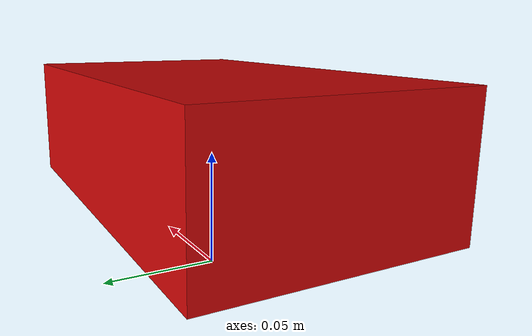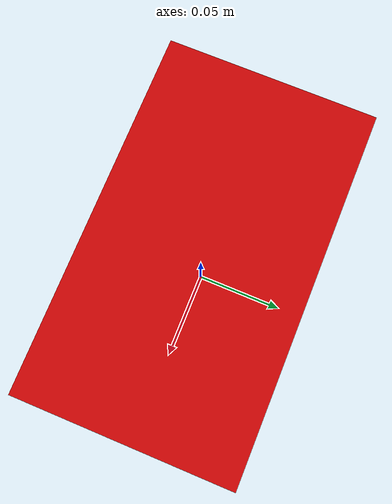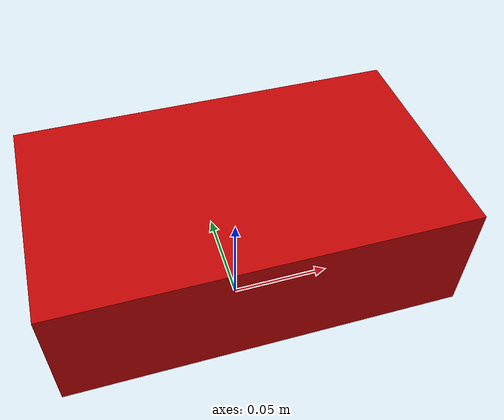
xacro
<?xml version="1.0"?>
<robot xmlns:xacro="http://www.ros.org/wiki/xacro" name="altino_lite">
  <!-- Approximate pre-sensor model for TF/RViz bring-up. Measure and update
       dimensions when permanent sensor mounts are installed. -->
  <xacro:property name="body_length" value="0.180"/>
  <xacro:property name="body_width" value="0.105"/>
  <xacro:property name="body_height" value="0.055"/>
  <xacro:property name="base_z" value="0.030"/>
  <xacro:property name="wheel_base" value="0.120"/>
  <xacro:property name="track_width" value="0.090"/>
  <xacro:property name="wheel_radius" value="0.018"/>
  <xacro:property name="wheel_width" value="0.012"/>
  <xacro:arg name="include_sensor_placeholders" default="false"/>

  <material name="altino_red">
    <color rgba="0.8 0.02 0.02 1.0"/>
  </material>
  <material name="dark_gray">
    <color rgba="0.05 0.05 0.05 1.0"/>
  </material>
  <material name="sensor_blue">
    <color rgba="0.0 0.2 0.8 0.8"/>
  </material>

  <link name="base_footprint"/>

  <joint name="base_footprint_to_base_link" type="fixed">
    <parent link="base_footprint"/>
    <child link="base_link"/>
    <origin xyz="0 0 ${base_z}" rpy="0 0 0"/>
  </joint>

  <link name="base_link">
    <visual>
      <origin xyz="0 0 ${body_height / 2.0}" rpy="0 0 0"/>
      <geometry>
        <box size="${body_length} ${body_width} ${body_height}"/>
      </geometry>
      <material name="altino_red"/>
    </visual>
    <collision>
      <origin xyz="0 0 ${body_height / 2.0}" rpy="0 0 0"/>
      <geometry>
        <box size="${body_length} ${body_width} ${body_height}"/>
      </geometry>
    </collision>
    <inertial>
      <origin xyz="0 0 ${body_height / 2.0}" rpy="0 0 0"/>
      <mass value="0.8"/>
      <inertia ixx="0.002" ixy="0" ixz="0" iyy="0.004" iyz="0" izz="0.005"/>
    </inertial>
  </link>

  <xacro:macro name="wheel" params="name x y">
    <link name="${name}_link">
      <visual>
        <origin xyz="0 0 0" rpy="1.5708 0 0"/>
        <geometry>
          <cylinder radius="${wheel_radius}" length="${wheel_width}"/>
        </geometry>
        <material name="dark_gray"/>
      </visual>
      <collision>
        <origin xyz="0 0 0" rpy="1.5708 0 0"/>
        <geometry>
          <cylinder radius="${wheel_radius}" length="${wheel_width}"/>
        </geometry>
      </collision>
      <inertial>
        <mass value="0.03"/>
        <inertia ixx="0.00001" ixy="0" ixz="0" iyy="0.00001" iyz="0" izz="0.00001"/>
      </inertial>
    </link>
    <joint name="${name}_joint" type="fixed">
      <parent link="base_link"/>
      <child link="${name}_link"/>
      <origin xyz="${x} ${y} ${wheel_radius}" rpy="0 0 0"/>
    </joint>
  </xacro:macro>

  <xacro:wheel name="front_left_wheel" x="${wheel_base / 2.0}" y="${track_width / 2.0}"/>
  <xacro:wheel name="front_right_wheel" x="${wheel_base / 2.0}" y="${-track_width / 2.0}"/>
  <xacro:wheel name="rear_left_wheel" x="${-wheel_base / 2.0}" y="${track_width / 2.0}"/>
  <xacro:wheel name="rear_right_wheel" x="${-wheel_base / 2.0}" y="${-track_width / 2.0}"/>

  <xacro:if value="$(arg include_sensor_placeholders)">
    <link name="imu_link">
      <visual>
        <origin xyz="0 0 0" rpy="0 0 0"/>
        <geometry>
          <box size="0.025 0.018 0.006"/>
        </geometry>
        <material name="sensor_blue"/>
      </visual>
    </link>
    <joint name="base_link_to_imu_link" type="fixed">
      <parent link="base_link"/>
      <child link="imu_link"/>
      <origin xyz="0 0 ${body_height + 0.004}" rpy="0 0 0"/>
    </joint>

    <link name="range_front_link">
      <visual>
        <origin xyz="0 0 0" rpy="0 0 0"/>
        <geometry>
          <box size="0.012 0.045 0.018"/>
        </geometry>
        <material name="sensor_blue"/>
      </visual>
    </link>
    <joint name="base_link_to_range_front_link" type="fixed">
      <parent link="base_link"/>
      <child link="range_front_link"/>
      <origin xyz="${body_length / 2.0 + 0.006} 0 ${body_height * 0.65}" rpy="0 0 0"/>
    </joint>

    <link name="laser_link">
      <visual>
        <origin xyz="0 0 0" rpy="0 0 0"/>
        <geometry>
          <cylinder radius="0.025" length="0.018"/>
        </geometry>
        <material name="sensor_blue"/>
      </visual>
    </link>
    <joint name="base_link_to_laser_link" type="fixed">
      <parent link="base_link"/>
      <child link="laser_link"/>
      <origin xyz="0.025 0 ${body_height + 0.018}" rpy="0 0 0"/>
    </joint>
  </xacro:if>
</robot>
